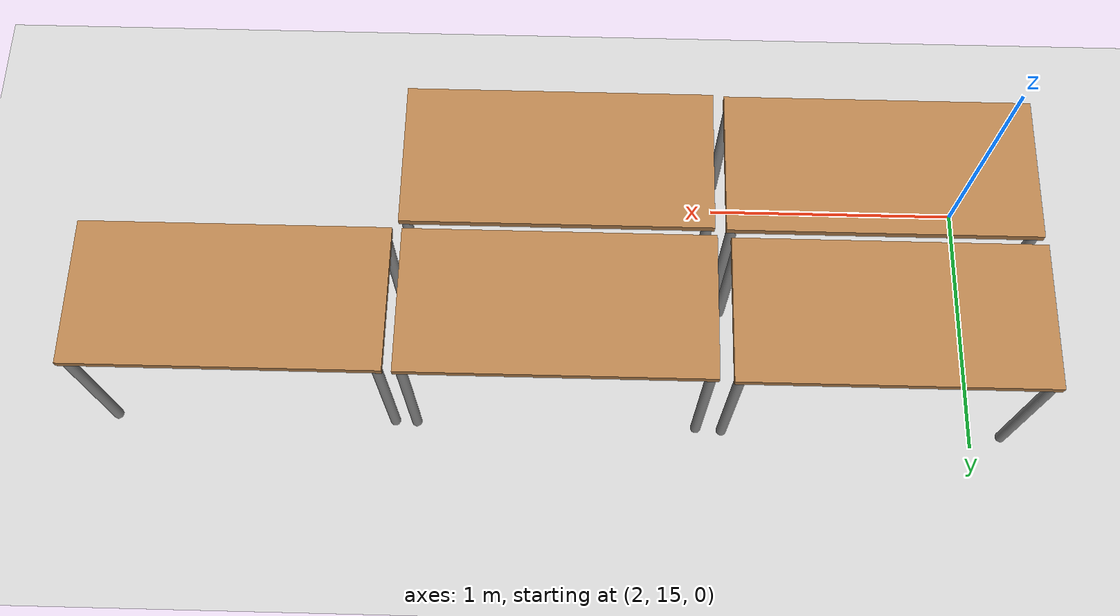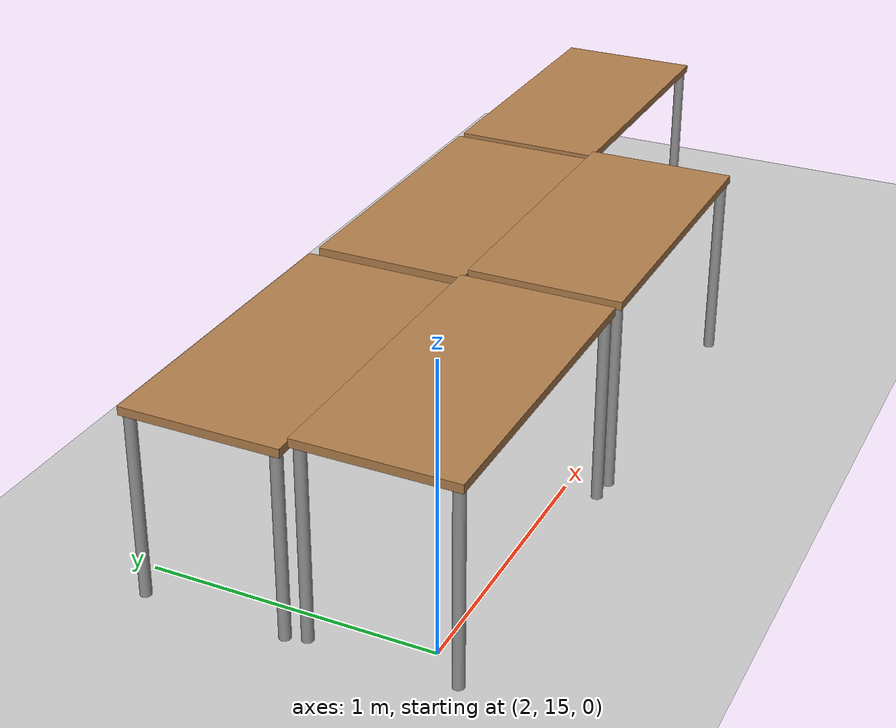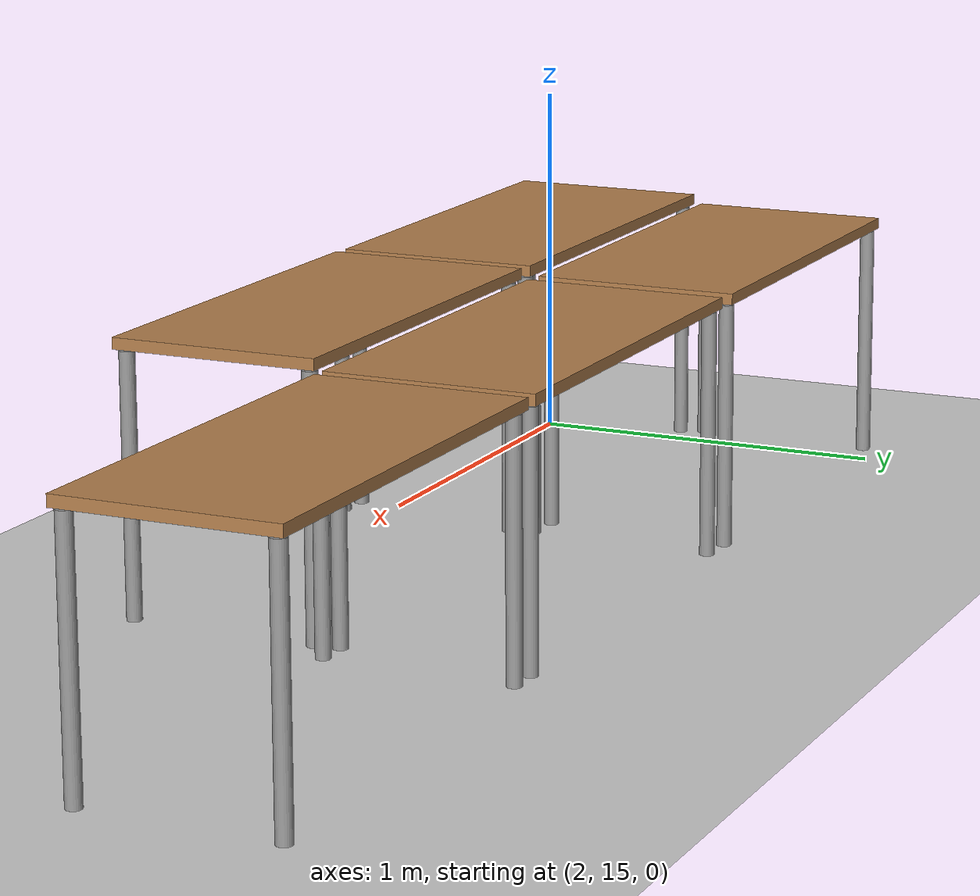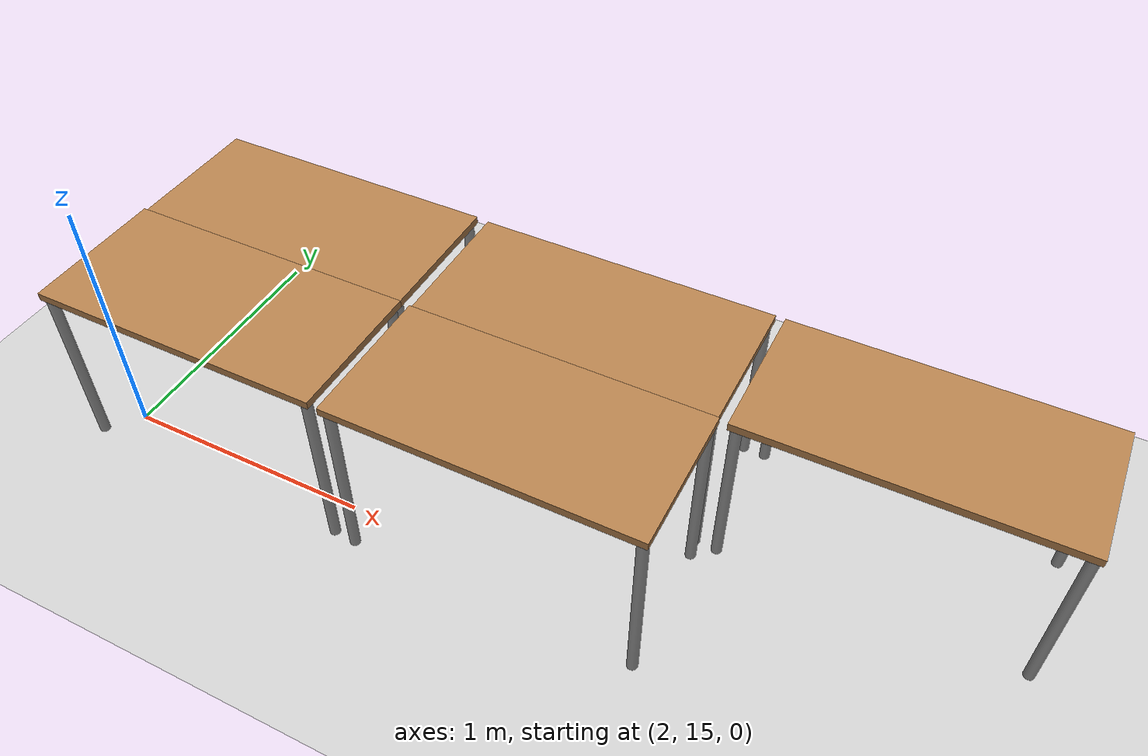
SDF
<sdf version="1.6">
 <world name="default">
  <model name="ground_plane">
   <static>1</static>
   <link name="link">
    <collision name="collision">
     <geometry><plane><normal>0 0 1</normal><size>100 100</size></plane></geometry>
     <surface>
      <contact><collide_bitmask>65535</collide_bitmask></contact>
      <friction><ode><mu>100</mu><mu2>50</mu2></ode></friction>
     </surface>
    </collision>
    <visual name="visual">
     <cast_shadows>0</cast_shadows>
     <geometry><plane><normal>0 0 1</normal><size>100 100</size></plane></geometry>
     <material>
      <script><uri>file://media/materials/scripts/gazebo.material</uri><name>Gazebo/Grey</name></script>
     </material>
    </visual>
   </link>
  </model>
  <model name="table_petite_clone_0_clone_clone">
   <link name="link">
    <inertial>
     <mass>1</mass>
     <inertia><ixx>1</ixx><ixy>0</ixy><ixz>0</ixz><iyy>1</iyy><iyz>0</iyz><izz>1</izz></inertia>
    </inertial>
    <visual name="back_right_leg">
     <pose>-0.55 -0.25 0.34 0 -0 0</pose>
     <geometry><cylinder><radius>0.02</radius><length>0.68</length></cylinder></geometry>
     <material>
      <script><uri>file://media/materials/scripts/gazebo.material</uri><name>Gazebo/Grey</name></script>
      <shader type="pixel"><normal_map>__default__</normal_map></shader>
      <ambient>0.3 0.3 0.3 1</ambient>
      <diffuse>0.7 0.7 0.7 1</diffuse>
      <specular>0.01 0.01 0.01 1</specular>
      <emissive>0 0 0 1</emissive>
     </material>
    </visual>
    <visual name="front_right_leg">
     <pose>0.55 -0.25 0.34 0 -0 0</pose>
     <geometry><cylinder><radius>0.02</radius><length>0.68</length></cylinder></geometry>
     <material>
      <script><uri>file://media/materials/scripts/gazebo.material</uri><name>Gazebo/Grey</name></script>
      <shader type="pixel"><normal_map>__default__</normal_map></shader>
      <ambient>0.3 0.3 0.3 1</ambient>
      <diffuse>0.7 0.7 0.7 1</diffuse>
      <specular>0.01 0.01 0.01 1</specular>
      <emissive>0 0 0 1</emissive>
     </material>
    </visual>
    <visual name="back_left_leg">
     <pose>-0.55 0.25 0.34 0 -0 0</pose>
     <geometry><cylinder><radius>0.02</radius><length>0.68</length></cylinder></geometry>
     <material>
      <script><uri>file://media/materials/scripts/gazebo.material</uri><name>Gazebo/Grey</name></script>
      <shader type="pixel"><normal_map>__default__</normal_map></shader>
      <ambient>0.3 0.3 0.3 1</ambient>
      <diffuse>0.7 0.7 0.7 1</diffuse>
      <specular>0.01 0.01 0.01 1</specular>
      <emissive>0 0 0 1</emissive>
     </material>
    </visual>
    <visual name="front_left_leg">
     <pose>0.55 0.25 0.34 0 -0 0</pose>
     <geometry><cylinder><radius>0.02</radius><length>0.68</length></cylinder></geometry>
     <material>
      <script><uri>file://media/materials/scripts/gazebo.material</uri><name>Gazebo/Grey</name></script>
      <shader type="pixel"><normal_map>__default__</normal_map></shader>
      <ambient>0.3 0.3 0.3 1</ambient>
      <diffuse>0.7 0.7 0.7 1</diffuse>
      <specular>0.01 0.01 0.01 1</specular>
      <emissive>0 0 0 1</emissive>
     </material>
    </visual>
    <visual name="visual1">
     <pose>0 0 0.7 0 -0 0</pose>
     <geometry><box><size>1.15 0.55 0.03</size></box></geometry>
     <material>
      <script><uri>file://media/materials/scripts/gazebo.material</uri><name>Gazebo/Wood</name></script>
      <shader type="pixel"><normal_map>__default__</normal_map></shader>
      <ambient>1 1 1 1</ambient>
      <diffuse>1 1 1 1</diffuse>
      <specular>0.2 0.2 0.2 1</specular>
      <emissive>0 0 0 1</emissive>
     </material>
    </visual>
    <collision name="surface">
     <pose>0 0 0.7 0 -0 0</pose>
     <geometry><box><size>1.15 0.55 0.03</size></box></geometry>
     <surface>
      <friction>
       <ode><mu>0.6</mu><mu2>0.6</mu2><fdir1>0 0 0</fdir1><slip1>0</slip1><slip2>0</slip2></ode>
       <torsional>
        <coefficient>1</coefficient>
        <patch_radius>0</patch_radius>
        <surface_radius>0</surface_radius>
        <use_patch_radius>1</use_patch_radius>
        <ode><slip>0</slip></ode>
       </torsional>
      </friction>
      <bounce><restitution_coefficient>0</restitution_coefficient><threshold>1e+06</threshold></bounce>
      <contact>
       <collide_without_contact>0</collide_without_contact>
       <collide_without_contact_bitmask>1</collide_without_contact_bitmask>
       <collide_bitmask>1</collide_bitmask>
       <ode>
        <soft_cfm>0</soft_cfm>
        <soft_erp>0.2</soft_erp>
        <kp>1e+13</kp>
        <kd>1</kd>
        <max_vel>0.01</max_vel>
        <min_depth>0</min_depth>
       </ode>
       <bullet>
        <split_impulse>1</split_impulse>
        <split_impulse_penetration_threshold>-0.01</split_impulse_penetration_threshold>
        <soft_cfm>0</soft_cfm>
        <soft_erp>0.2</soft_erp>
        <kp>1e+13</kp>
        <kd>1</kd>
       </bullet>
      </contact>
     </surface>
    </collision>
    <collision name="back_right_leg">
     <pose>-0.55 -0.25 0.34 0 -0 0</pose>
     <geometry><cylinder><radius>0.02</radius><length>0.68</length></cylinder></geometry>
     <surface>
      <friction>
       <ode><mu>1</mu><mu2>1</mu2><fdir1>0 0 0</fdir1><slip1>0</slip1><slip2>0</slip2></ode>
       <torsional>
        <coefficient>1</coefficient>
        <patch_radius>0</patch_radius>
        <surface_radius>0</surface_radius>
        <use_patch_radius>1</use_patch_radius>
        <ode><slip>0</slip></ode>
       </torsional>
      </friction>
      <bounce><restitution_coefficient>0</restitution_coefficient><threshold>1e+06</threshold></bounce>
      <contact>
       <collide_without_contact>0</collide_without_contact>
       <collide_without_contact_bitmask>1</collide_without_contact_bitmask>
       <collide_bitmask>1</collide_bitmask>
       <ode>
        <soft_cfm>0</soft_cfm>
        <soft_erp>0.2</soft_erp>
        <kp>1e+13</kp>
        <kd>1</kd>
        <max_vel>0.01</max_vel>
        <min_depth>0</min_depth>
       </ode>
       <bullet>
        <split_impulse>1</split_impulse>
        <split_impulse_penetration_threshold>-0.01</split_impulse_penetration_threshold>
        <soft_cfm>0</soft_cfm>
        <soft_erp>0.2</soft_erp>
        <kp>1e+13</kp>
        <kd>1</kd>
       </bullet>
      </contact>
     </surface>
    </collision>
    <collision name="back_left_leg">
     <pose>-0.55 0.25 0.34 0 -0 0</pose>
     <geometry><cylinder><radius>0.02</radius><length>0.68</length></cylinder></geometry>
     <surface>
      <friction>
       <ode><mu>1</mu><mu2>1</mu2><fdir1>0 0 0</fdir1><slip1>0</slip1><slip2>0</slip2></ode>
       <torsional>
        <coefficient>1</coefficient>
        <patch_radius>0</patch_radius>
        <surface_radius>0</surface_radius>
        <use_patch_radius>1</use_patch_radius>
        <ode><slip>0</slip></ode>
       </torsional>
      </friction>
      <bounce><restitution_coefficient>0</restitution_coefficient><threshold>1e+06</threshold></bounce>
      <contact>
       <collide_without_contact>0</collide_without_contact>
       <collide_without_contact_bitmask>1</collide_without_contact_bitmask>
       <collide_bitmask>1</collide_bitmask>
       <ode>
        <soft_cfm>0</soft_cfm>
        <soft_erp>0.2</soft_erp>
        <kp>1e+13</kp>
        <kd>1</kd>
        <max_vel>0.01</max_vel>
        <min_depth>0</min_depth>
       </ode>
       <bullet>
        <split_impulse>1</split_impulse>
        <split_impulse_penetration_threshold>-0.01</split_impulse_penetration_threshold>
        <soft_cfm>0</soft_cfm>
        <soft_erp>0.2</soft_erp>
        <kp>1e+13</kp>
        <kd>1</kd>
       </bullet>
      </contact>
     </surface>
    </collision>
    <collision name="front_left_leg">
     <pose>0.55 0.25 0.34 0 -0 0</pose>
     <geometry><cylinder><radius>0.02</radius><length>0.68</length></cylinder></geometry>
     <surface>
      <friction>
       <ode><mu>1</mu><mu2>1</mu2><fdir1>0 0 0</fdir1><slip1>0</slip1><slip2>0</slip2></ode>
       <torsional>
        <coefficient>1</coefficient>
        <patch_radius>0</patch_radius>
        <surface_radius>0</surface_radius>
        <use_patch_radius>1</use_patch_radius>
        <ode><slip>0</slip></ode>
       </torsional>
      </friction>
      <bounce><restitution_coefficient>0</restitution_coefficient><threshold>1e+06</threshold></bounce>
      <contact>
       <collide_without_contact>0</collide_without_contact>
       <collide_without_contact_bitmask>1</collide_without_contact_bitmask>
       <collide_bitmask>1</collide_bitmask>
       <ode>
        <soft_cfm>0</soft_cfm>
        <soft_erp>0.2</soft_erp>
        <kp>1e+13</kp>
        <kd>1</kd>
        <max_vel>0.01</max_vel>
        <min_depth>0</min_depth>
       </ode>
       <bullet>
        <split_impulse>1</split_impulse>
        <split_impulse_penetration_threshold>-0.01</split_impulse_penetration_threshold>
        <soft_cfm>0</soft_cfm>
        <soft_erp>0.2</soft_erp>
        <kp>1e+13</kp>
        <kd>1</kd>
       </bullet>
      </contact>
     </surface>
    </collision>
    <collision name="front_right_leg">
     <pose>0.55 -0.25 0.34 0 -0 0</pose>
     <geometry><cylinder><radius>0.02</radius><length>0.68</length></cylinder></geometry>
     <surface>
      <friction>
       <ode><mu>1</mu><mu2>1</mu2><fdir1>0 0 0</fdir1><slip1>0</slip1><slip2>0</slip2></ode>
       <torsional>
        <coefficient>1</coefficient>
        <patch_radius>0</patch_radius>
        <surface_radius>0</surface_radius>
        <use_patch_radius>1</use_patch_radius>
        <ode><slip>0</slip></ode>
       </torsional>
      </friction>
      <bounce><restitution_coefficient>0</restitution_coefficient><threshold>1e+06</threshold></bounce>
      <contact>
       <collide_without_contact>0</collide_without_contact>
       <collide_without_contact_bitmask>1</collide_without_contact_bitmask>
       <collide_bitmask>1</collide_bitmask>
       <ode>
        <soft_cfm>0</soft_cfm>
        <soft_erp>0.2</soft_erp>
        <kp>1e+13</kp>
        <kd>1</kd>
        <max_vel>0.01</max_vel>
        <min_depth>0</min_depth>
       </ode>
       <bullet>
        <split_impulse>1</split_impulse>
        <split_impulse_penetration_threshold>-0.01</split_impulse_penetration_threshold>
        <soft_cfm>0</soft_cfm>
        <soft_erp>0.2</soft_erp>
        <kp>1e+13</kp>
        <kd>1</kd>
       </bullet>
      </contact>
     </surface>
    </collision>
   </link>
   <static>1</static>
   <pose>4.81182 15.6908 -0.033907 0 -0 3.14159</pose>
  </model>
  <model name="table_petite_clone_0_clone_clone_0">
   <link name="link">
    <inertial>
     <mass>1</mass>
     <inertia><ixx>1</ixx><ixy>0</ixy><ixz>0</ixz><iyy>1</iyy><iyz>0</iyz><izz>1</izz></inertia>
    </inertial>
    <visual name="back_right_leg">
     <pose>-0.55 -0.25 0.34 0 -0 0</pose>
     <geometry><cylinder><radius>0.02</radius><length>0.68</length></cylinder></geometry>
     <material>
      <script><uri>file://media/materials/scripts/gazebo.material</uri><name>Gazebo/Grey</name></script>
      <shader type="pixel"><normal_map>__default__</normal_map></shader>
      <ambient>0.3 0.3 0.3 1</ambient>
      <diffuse>0.7 0.7 0.7 1</diffuse>
      <specular>0.01 0.01 0.01 1</specular>
      <emissive>0 0 0 1</emissive>
     </material>
    </visual>
    <visual name="front_right_leg">
     <pose>0.55 -0.25 0.34 0 -0 0</pose>
     <geometry><cylinder><radius>0.02</radius><length>0.68</length></cylinder></geometry>
     <material>
      <script><uri>file://media/materials/scripts/gazebo.material</uri><name>Gazebo/Grey</name></script>
      <shader type="pixel"><normal_map>__default__</normal_map></shader>
      <ambient>0.3 0.3 0.3 1</ambient>
      <diffuse>0.7 0.7 0.7 1</diffuse>
      <specular>0.01 0.01 0.01 1</specular>
      <emissive>0 0 0 1</emissive>
     </material>
    </visual>
    <visual name="back_left_leg">
     <pose>-0.55 0.25 0.34 0 -0 0</pose>
     <geometry><cylinder><radius>0.02</radius><length>0.68</length></cylinder></geometry>
     <material>
      <script><uri>file://media/materials/scripts/gazebo.material</uri><name>Gazebo/Grey</name></script>
      <shader type="pixel"><normal_map>__default__</normal_map></shader>
      <ambient>0.3 0.3 0.3 1</ambient>
      <diffuse>0.7 0.7 0.7 1</diffuse>
      <specular>0.01 0.01 0.01 1</specular>
      <emissive>0 0 0 1</emissive>
     </material>
    </visual>
    <visual name="front_left_leg">
     <pose>0.55 0.25 0.34 0 -0 0</pose>
     <geometry><cylinder><radius>0.02</radius><length>0.68</length></cylinder></geometry>
     <material>
      <script><uri>file://media/materials/scripts/gazebo.material</uri><name>Gazebo/Grey</name></script>
      <shader type="pixel"><normal_map>__default__</normal_map></shader>
      <ambient>0.3 0.3 0.3 1</ambient>
      <diffuse>0.7 0.7 0.7 1</diffuse>
      <specular>0.01 0.01 0.01 1</specular>
      <emissive>0 0 0 1</emissive>
     </material>
    </visual>
    <visual name="visual1">
     <pose>0 0 0.7 0 -0 0</pose>
     <geometry><box><size>1.15 0.55 0.03</size></box></geometry>
     <material>
      <script><uri>file://media/materials/scripts/gazebo.material</uri><name>Gazebo/Wood</name></script>
      <shader type="pixel"><normal_map>__default__</normal_map></shader>
      <ambient>1 1 1 1</ambient>
      <diffuse>1 1 1 1</diffuse>
      <specular>0.2 0.2 0.2 1</specular>
      <emissive>0 0 0 1</emissive>
     </material>
    </visual>
    <collision name="surface">
     <pose>0 0 0.7 0 -0 0</pose>
     <geometry><box><size>1.15 0.55 0.03</size></box></geometry>
     <surface>
      <friction>
       <ode><mu>0.6</mu><mu2>0.6</mu2><fdir1>0 0 0</fdir1><slip1>0</slip1><slip2>0</slip2></ode>
       <torsional>
        <coefficient>1</coefficient>
        <patch_radius>0</patch_radius>
        <surface_radius>0</surface_radius>
        <use_patch_radius>1</use_patch_radius>
        <ode><slip>0</slip></ode>
       </torsional>
      </friction>
      <bounce><restitution_coefficient>0</restitution_coefficient><threshold>1e+06</threshold></bounce>
      <contact>
       <collide_without_contact>0</collide_without_contact>
       <collide_without_contact_bitmask>1</collide_without_contact_bitmask>
       <collide_bitmask>1</collide_bitmask>
       <ode>
        <soft_cfm>0</soft_cfm>
        <soft_erp>0.2</soft_erp>
        <kp>1e+13</kp>
        <kd>1</kd>
        <max_vel>0.01</max_vel>
        <min_depth>0</min_depth>
       </ode>
       <bullet>
        <split_impulse>1</split_impulse>
        <split_impulse_penetration_threshold>-0.01</split_impulse_penetration_threshold>
        <soft_cfm>0</soft_cfm>
        <soft_erp>0.2</soft_erp>
        <kp>1e+13</kp>
        <kd>1</kd>
       </bullet>
      </contact>
     </surface>
    </collision>
    <collision name="back_right_leg">
     <pose>-0.55 -0.25 0.34 0 -0 0</pose>
     <geometry><cylinder><radius>0.02</radius><length>0.68</length></cylinder></geometry>
     <surface>
      <friction>
       <ode><mu>1</mu><mu2>1</mu2><fdir1>0 0 0</fdir1><slip1>0</slip1><slip2>0</slip2></ode>
       <torsional>
        <coefficient>1</coefficient>
        <patch_radius>0</patch_radius>
        <surface_radius>0</surface_radius>
        <use_patch_radius>1</use_patch_radius>
        <ode><slip>0</slip></ode>
       </torsional>
      </friction>
      <bounce><restitution_coefficient>0</restitution_coefficient><threshold>1e+06</threshold></bounce>
      <contact>
       <collide_without_contact>0</collide_without_contact>
       <collide_without_contact_bitmask>1</collide_without_contact_bitmask>
       <collide_bitmask>1</collide_bitmask>
       <ode>
        <soft_cfm>0</soft_cfm>
        <soft_erp>0.2</soft_erp>
        <kp>1e+13</kp>
        <kd>1</kd>
        <max_vel>0.01</max_vel>
        <min_depth>0</min_depth>
       </ode>
       <bullet>
        <split_impulse>1</split_impulse>
        <split_impulse_penetration_threshold>-0.01</split_impulse_penetration_threshold>
        <soft_cfm>0</soft_cfm>
        <soft_erp>0.2</soft_erp>
        <kp>1e+13</kp>
        <kd>1</kd>
       </bullet>
      </contact>
     </surface>
    </collision>
    <collision name="back_left_leg">
     <pose>-0.55 0.25 0.34 0 -0 0</pose>
     <geometry><cylinder><radius>0.02</radius><length>0.68</length></cylinder></geometry>
     <surface>
      <friction>
       <ode><mu>1</mu><mu2>1</mu2><fdir1>0 0 0</fdir1><slip1>0</slip1><slip2>0</slip2></ode>
       <torsional>
        <coefficient>1</coefficient>
        <patch_radius>0</patch_radius>
        <surface_radius>0</surface_radius>
        <use_patch_radius>1</use_patch_radius>
        <ode><slip>0</slip></ode>
       </torsional>
      </friction>
      <bounce><restitution_coefficient>0</restitution_coefficient><threshold>1e+06</threshold></bounce>
      <contact>
       <collide_without_contact>0</collide_without_contact>
       <collide_without_contact_bitmask>1</collide_without_contact_bitmask>
       <collide_bitmask>1</collide_bitmask>
       <ode>
        <soft_cfm>0</soft_cfm>
        <soft_erp>0.2</soft_erp>
        <kp>1e+13</kp>
        <kd>1</kd>
        <max_vel>0.01</max_vel>
        <min_depth>0</min_depth>
       </ode>
       <bullet>
        <split_impulse>1</split_impulse>
        <split_impulse_penetration_threshold>-0.01</split_impulse_penetration_threshold>
        <soft_cfm>0</soft_cfm>
        <soft_erp>0.2</soft_erp>
        <kp>1e+13</kp>
        <kd>1</kd>
       </bullet>
      </contact>
     </surface>
    </collision>
    <collision name="front_left_leg">
     <pose>0.55 0.25 0.34 0 -0 0</pose>
     <geometry><cylinder><radius>0.02</radius><length>0.68</length></cylinder></geometry>
     <surface>
      <friction>
       <ode><mu>1</mu><mu2>1</mu2><fdir1>0 0 0</fdir1><slip1>0</slip1><slip2>0</slip2></ode>
       <torsional>
        <coefficient>1</coefficient>
        <patch_radius>0</patch_radius>
        <surface_radius>0</surface_radius>
        <use_patch_radius>1</use_patch_radius>
        <ode><slip>0</slip></ode>
       </torsional>
      </friction>
      <bounce><restitution_coefficient>0</restitution_coefficient><threshold>1e+06</threshold></bounce>
      <contact>
       <collide_without_contact>0</collide_without_contact>
       <collide_without_contact_bitmask>1</collide_without_contact_bitmask>
       <collide_bitmask>1</collide_bitmask>
       <ode>
        <soft_cfm>0</soft_cfm>
        <soft_erp>0.2</soft_erp>
        <kp>1e+13</kp>
        <kd>1</kd>
        <max_vel>0.01</max_vel>
        <min_depth>0</min_depth>
       </ode>
       <bullet>
        <split_impulse>1</split_impulse>
        <split_impulse_penetration_threshold>-0.01</split_impulse_penetration_threshold>
        <soft_cfm>0</soft_cfm>
        <soft_erp>0.2</soft_erp>
        <kp>1e+13</kp>
        <kd>1</kd>
       </bullet>
      </contact>
     </surface>
    </collision>
    <collision name="front_right_leg">
     <pose>0.55 -0.25 0.34 0 -0 0</pose>
     <geometry><cylinder><radius>0.02</radius><length>0.68</length></cylinder></geometry>
     <surface>
      <friction>
       <ode><mu>1</mu><mu2>1</mu2><fdir1>0 0 0</fdir1><slip1>0</slip1><slip2>0</slip2></ode>
       <torsional>
        <coefficient>1</coefficient>
        <patch_radius>0</patch_radius>
        <surface_radius>0</surface_radius>
        <use_patch_radius>1</use_patch_radius>
        <ode><slip>0</slip></ode>
       </torsional>
      </friction>
      <bounce><restitution_coefficient>0</restitution_coefficient><threshold>1e+06</threshold></bounce>
      <contact>
       <collide_without_contact>0</collide_without_contact>
       <collide_without_contact_bitmask>1</collide_without_contact_bitmask>
       <collide_bitmask>1</collide_bitmask>
       <ode>
        <soft_cfm>0</soft_cfm>
        <soft_erp>0.2</soft_erp>
        <kp>1e+13</kp>
        <kd>1</kd>
        <max_vel>0.01</max_vel>
        <min_depth>0</min_depth>
       </ode>
       <bullet>
        <split_impulse>1</split_impulse>
        <split_impulse_penetration_threshold>-0.01</split_impulse_penetration_threshold>
        <soft_cfm>0</soft_cfm>
        <soft_erp>0.2</soft_erp>
        <kp>1e+13</kp>
        <kd>1</kd>
       </bullet>
      </contact>
     </surface>
    </collision>
   </link>
   <static>1</static>
   <pose>3.62668 15.6922 -0.033907 0 -0 3.14159</pose>
  </model>
  <model name="table_petite_clone_0_clone_clone_1">
   <link name="link">
    <inertial>
     <mass>1</mass>
     <inertia><ixx>1</ixx><ixy>0</ixy><ixz>0</ixz><iyy>1</iyy><iyz>0</iyz><izz>1</izz></inertia>
    </inertial>
    <visual name="back_right_leg">
     <pose>-0.55 -0.25 0.34 0 -0 0</pose>
     <geometry><cylinder><radius>0.02</radius><length>0.68</length></cylinder></geometry>
     <material>
      <script><uri>file://media/materials/scripts/gazebo.material</uri><name>Gazebo/Grey</name></script>
      <shader type="pixel"><normal_map>__default__</normal_map></shader>
      <ambient>0.3 0.3 0.3 1</ambient>
      <diffuse>0.7 0.7 0.7 1</diffuse>
      <specular>0.01 0.01 0.01 1</specular>
      <emissive>0 0 0 1</emissive>
     </material>
    </visual>
    <visual name="front_right_leg">
     <pose>0.55 -0.25 0.34 0 -0 0</pose>
     <geometry><cylinder><radius>0.02</radius><length>0.68</length></cylinder></geometry>
     <material>
      <script><uri>file://media/materials/scripts/gazebo.material</uri><name>Gazebo/Grey</name></script>
      <shader type="pixel"><normal_map>__default__</normal_map></shader>
      <ambient>0.3 0.3 0.3 1</ambient>
      <diffuse>0.7 0.7 0.7 1</diffuse>
      <specular>0.01 0.01 0.01 1</specular>
      <emissive>0 0 0 1</emissive>
     </material>
    </visual>
    <visual name="back_left_leg">
     <pose>-0.55 0.25 0.34 0 -0 0</pose>
     <geometry><cylinder><radius>0.02</radius><length>0.68</length></cylinder></geometry>
     <material>
      <script><uri>file://media/materials/scripts/gazebo.material</uri><name>Gazebo/Grey</name></script>
      <shader type="pixel"><normal_map>__default__</normal_map></shader>
      <ambient>0.3 0.3 0.3 1</ambient>
      <diffuse>0.7 0.7 0.7 1</diffuse>
      <specular>0.01 0.01 0.01 1</specular>
      <emissive>0 0 0 1</emissive>
     </material>
    </visual>
    <visual name="front_left_leg">
     <pose>0.55 0.25 0.34 0 -0 0</pose>
     <geometry><cylinder><radius>0.02</radius><length>0.68</length></cylinder></geometry>
     <material>
      <script><uri>file://media/materials/scripts/gazebo.material</uri><name>Gazebo/Grey</name></script>
      <shader type="pixel"><normal_map>__default__</normal_map></shader>
      <ambient>0.3 0.3 0.3 1</ambient>
      <diffuse>0.7 0.7 0.7 1</diffuse>
      <specular>0.01 0.01 0.01 1</specular>
      <emissive>0 0 0 1</emissive>
     </material>
    </visual>
    <visual name="visual1">
     <pose>0 0 0.7 0 -0 0</pose>
     <geometry><box><size>1.15 0.55 0.03</size></box></geometry>
     <material>
      <script><uri>file://media/materials/scripts/gazebo.material</uri><name>Gazebo/Wood</name></script>
      <shader type="pixel"><normal_map>__default__</normal_map></shader>
      <ambient>1 1 1 1</ambient>
      <diffuse>1 1 1 1</diffuse>
      <specular>0.2 0.2 0.2 1</specular>
      <emissive>0 0 0 1</emissive>
     </material>
    </visual>
    <collision name="surface">
     <pose>0 0 0.7 0 -0 0</pose>
     <geometry><box><size>1.15 0.55 0.03</size></box></geometry>
     <surface>
      <friction>
       <ode><mu>0.6</mu><mu2>0.6</mu2><fdir1>0 0 0</fdir1><slip1>0</slip1><slip2>0</slip2></ode>
       <torsional>
        <coefficient>1</coefficient>
        <patch_radius>0</patch_radius>
        <surface_radius>0</surface_radius>
        <use_patch_radius>1</use_patch_radius>
        <ode><slip>0</slip></ode>
       </torsional>
      </friction>
      <bounce><restitution_coefficient>0</restitution_coefficient><threshold>1e+06</threshold></bounce>
      <contact>
       <collide_without_contact>0</collide_without_contact>
       <collide_without_contact_bitmask>1</collide_without_contact_bitmask>
       <collide_bitmask>1</collide_bitmask>
       <ode>
        <soft_cfm>0</soft_cfm>
        <soft_erp>0.2</soft_erp>
        <kp>1e+13</kp>
        <kd>1</kd>
        <max_vel>0.01</max_vel>
        <min_depth>0</min_depth>
       </ode>
       <bullet>
        <split_impulse>1</split_impulse>
        <split_impulse_penetration_threshold>-0.01</split_impulse_penetration_threshold>
        <soft_cfm>0</soft_cfm>
        <soft_erp>0.2</soft_erp>
        <kp>1e+13</kp>
        <kd>1</kd>
       </bullet>
      </contact>
     </surface>
    </collision>
    <collision name="back_right_leg">
     <pose>-0.55 -0.25 0.34 0 -0 0</pose>
     <geometry><cylinder><radius>0.02</radius><length>0.68</length></cylinder></geometry>
     <surface>
      <friction>
       <ode><mu>1</mu><mu2>1</mu2><fdir1>0 0 0</fdir1><slip1>0</slip1><slip2>0</slip2></ode>
       <torsional>
        <coefficient>1</coefficient>
        <patch_radius>0</patch_radius>
        <surface_radius>0</surface_radius>
        <use_patch_radius>1</use_patch_radius>
        <ode><slip>0</slip></ode>
       </torsional>
      </friction>
      <bounce><restitution_coefficient>0</restitution_coefficient><threshold>1e+06</threshold></bounce>
      <contact>
       <collide_without_contact>0</collide_without_contact>
       <collide_without_contact_bitmask>1</collide_without_contact_bitmask>
       <collide_bitmask>1</collide_bitmask>
       <ode>
        <soft_cfm>0</soft_cfm>
        <soft_erp>0.2</soft_erp>
        <kp>1e+13</kp>
        <kd>1</kd>
        <max_vel>0.01</max_vel>
        <min_depth>0</min_depth>
       </ode>
       <bullet>
        <split_impulse>1</split_impulse>
        <split_impulse_penetration_threshold>-0.01</split_impulse_penetration_threshold>
        <soft_cfm>0</soft_cfm>
        <soft_erp>0.2</soft_erp>
        <kp>1e+13</kp>
        <kd>1</kd>
       </bullet>
      </contact>
     </surface>
    </collision>
    <collision name="back_left_leg">
     <pose>-0.55 0.25 0.34 0 -0 0</pose>
     <geometry><cylinder><radius>0.02</radius><length>0.68</length></cylinder></geometry>
     <surface>
      <friction>
       <ode><mu>1</mu><mu2>1</mu2><fdir1>0 0 0</fdir1><slip1>0</slip1><slip2>0</slip2></ode>
       <torsional>
        <coefficient>1</coefficient>
        <patch_radius>0</patch_radius>
        <surface_radius>0</surface_radius>
        <use_patch_radius>1</use_patch_radius>
        <ode><slip>0</slip></ode>
       </torsional>
      </friction>
      <bounce><restitution_coefficient>0</restitution_coefficient><threshold>1e+06</threshold></bounce>
      <contact>
       <collide_without_contact>0</collide_without_contact>
       <collide_without_contact_bitmask>1</collide_without_contact_bitmask>
       <collide_bitmask>1</collide_bitmask>
       <ode>
        <soft_cfm>0</soft_cfm>
        <soft_erp>0.2</soft_erp>
        <kp>1e+13</kp>
        <kd>1</kd>
        <max_vel>0.01</max_vel>
        <min_depth>0</min_depth>
       </ode>
       <bullet>
        <split_impulse>1</split_impulse>
        <split_impulse_penetration_threshold>-0.01</split_impulse_penetration_threshold>
        <soft_cfm>0</soft_cfm>
        <soft_erp>0.2</soft_erp>
        <kp>1e+13</kp>
        <kd>1</kd>
       </bullet>
      </contact>
     </surface>
    </collision>
    <collision name="front_left_leg">
     <pose>0.55 0.25 0.34 0 -0 0</pose>
     <geometry><cylinder><radius>0.02</radius><length>0.68</length></cylinder></geometry>
     <surface>
      <friction>
       <ode><mu>1</mu><mu2>1</mu2><fdir1>0 0 0</fdir1><slip1>0</slip1><slip2>0</slip2></ode>
       <torsional>
        <coefficient>1</coefficient>
        <patch_radius>0</patch_radius>
        <surface_radius>0</surface_radius>
        <use_patch_radius>1</use_patch_radius>
        <ode><slip>0</slip></ode>
       </torsional>
      </friction>
      <bounce><restitution_coefficient>0</restitution_coefficient><threshold>1e+06</threshold></bounce>
      <contact>
       <collide_without_contact>0</collide_without_contact>
       <collide_without_contact_bitmask>1</collide_without_contact_bitmask>
       <collide_bitmask>1</collide_bitmask>
       <ode>
        <soft_cfm>0</soft_cfm>
        <soft_erp>0.2</soft_erp>
        <kp>1e+13</kp>
        <kd>1</kd>
        <max_vel>0.01</max_vel>
        <min_depth>0</min_depth>
       </ode>
       <bullet>
        <split_impulse>1</split_impulse>
        <split_impulse_penetration_threshold>-0.01</split_impulse_penetration_threshold>
        <soft_cfm>0</soft_cfm>
        <soft_erp>0.2</soft_erp>
        <kp>1e+13</kp>
        <kd>1</kd>
       </bullet>
      </contact>
     </surface>
    </collision>
    <collision name="front_right_leg">
     <pose>0.55 -0.25 0.34 0 -0 0</pose>
     <geometry><cylinder><radius>0.02</radius><length>0.68</length></cylinder></geometry>
     <surface>
      <friction>
       <ode><mu>1</mu><mu2>1</mu2><fdir1>0 0 0</fdir1><slip1>0</slip1><slip2>0</slip2></ode>
       <torsional>
        <coefficient>1</coefficient>
        <patch_radius>0</patch_radius>
        <surface_radius>0</surface_radius>
        <use_patch_radius>1</use_patch_radius>
        <ode><slip>0</slip></ode>
       </torsional>
      </friction>
      <bounce><restitution_coefficient>0</restitution_coefficient><threshold>1e+06</threshold></bounce>
      <contact>
       <collide_without_contact>0</collide_without_contact>
       <collide_without_contact_bitmask>1</collide_without_contact_bitmask>
       <collide_bitmask>1</collide_bitmask>
       <ode>
        <soft_cfm>0</soft_cfm>
        <soft_erp>0.2</soft_erp>
        <kp>1e+13</kp>
        <kd>1</kd>
        <max_vel>0.01</max_vel>
        <min_depth>0</min_depth>
       </ode>
       <bullet>
        <split_impulse>1</split_impulse>
        <split_impulse_penetration_threshold>-0.01</split_impulse_penetration_threshold>
        <soft_cfm>0</soft_cfm>
        <soft_erp>0.2</soft_erp>
        <kp>1e+13</kp>
        <kd>1</kd>
       </bullet>
      </contact>
     </surface>
    </collision>
   </link>
   <static>1</static>
   <pose>2.42575 15.6999 -0.033907 0 -0 3.14159</pose>
  </model>
  <model name="table_petite_clone_0_clone_clone_5">
   <link name="link">
    <inertial>
     <mass>1</mass>
     <inertia><ixx>1</ixx><ixy>0</ixy><ixz>0</ixz><iyy>1</iyy><iyz>0</iyz><izz>1</izz></inertia>
    </inertial>
    <visual name="back_right_leg">
     <pose>-0.55 -0.25 0.34 0 -0 0</pose>
     <geometry><cylinder><radius>0.02</radius><length>0.68</length></cylinder></geometry>
     <material>
      <script><uri>file://media/materials/scripts/gazebo.material</uri><name>Gazebo/Grey</name></script>
      <shader type="pixel"><normal_map>__default__</normal_map></shader>
      <ambient>0.3 0.3 0.3 1</ambient>
      <diffuse>0.7 0.7 0.7 1</diffuse>
      <specular>0.01 0.01 0.01 1</specular>
      <emissive>0 0 0 1</emissive>
     </material>
    </visual>
    <visual name="front_right_leg">
     <pose>0.55 -0.25 0.34 0 -0 0</pose>
     <geometry><cylinder><radius>0.02</radius><length>0.68</length></cylinder></geometry>
     <material>
      <script><uri>file://media/materials/scripts/gazebo.material</uri><name>Gazebo/Grey</name></script>
      <shader type="pixel"><normal_map>__default__</normal_map></shader>
      <ambient>0.3 0.3 0.3 1</ambient>
      <diffuse>0.7 0.7 0.7 1</diffuse>
      <specular>0.01 0.01 0.01 1</specular>
      <emissive>0 0 0 1</emissive>
     </material>
    </visual>
    <visual name="back_left_leg">
     <pose>-0.55 0.25 0.34 0 -0 0</pose>
     <geometry><cylinder><radius>0.02</radius><length>0.68</length></cylinder></geometry>
     <material>
      <script><uri>file://media/materials/scripts/gazebo.material</uri><name>Gazebo/Grey</name></script>
      <shader type="pixel"><normal_map>__default__</normal_map></shader>
      <ambient>0.3 0.3 0.3 1</ambient>
      <diffuse>0.7 0.7 0.7 1</diffuse>
      <specular>0.01 0.01 0.01 1</specular>
      <emissive>0 0 0 1</emissive>
     </material>
    </visual>
    <visual name="front_left_leg">
     <pose>0.55 0.25 0.34 0 -0 0</pose>
     <geometry><cylinder><radius>0.02</radius><length>0.68</length></cylinder></geometry>
     <material>
      <script><uri>file://media/materials/scripts/gazebo.material</uri><name>Gazebo/Grey</name></script>
      <shader type="pixel"><normal_map>__default__</normal_map></shader>
      <ambient>0.3 0.3 0.3 1</ambient>
      <diffuse>0.7 0.7 0.7 1</diffuse>
      <specular>0.01 0.01 0.01 1</specular>
      <emissive>0 0 0 1</emissive>
     </material>
    </visual>
    <visual name="visual1">
     <pose>0 0 0.7 0 -0 0</pose>
     <geometry><box><size>1.15 0.55 0.03</size></box></geometry>
     <material>
      <script><uri>file://media/materials/scripts/gazebo.material</uri><name>Gazebo/Wood</name></script>
      <shader type="pixel"><normal_map>__default__</normal_map></shader>
      <ambient>1 1 1 1</ambient>
      <diffuse>1 1 1 1</diffuse>
      <specular>0.2 0.2 0.2 1</specular>
      <emissive>0 0 0 1</emissive>
     </material>
    </visual>
    <collision name="surface">
     <pose>0 0 0.7 0 -0 0</pose>
     <geometry><box><size>1.15 0.55 0.03</size></box></geometry>
     <surface>
      <friction>
       <ode><mu>0.6</mu><mu2>0.6</mu2><fdir1>0 0 0</fdir1><slip1>0</slip1><slip2>0</slip2></ode>
       <torsional>
        <coefficient>1</coefficient>
        <patch_radius>0</patch_radius>
        <surface_radius>0</surface_radius>
        <use_patch_radius>1</use_patch_radius>
        <ode><slip>0</slip></ode>
       </torsional>
      </friction>
      <bounce><restitution_coefficient>0</restitution_coefficient><threshold>1e+06</threshold></bounce>
      <contact>
       <collide_without_contact>0</collide_without_contact>
       <collide_without_contact_bitmask>1</collide_without_contact_bitmask>
       <collide_bitmask>1</collide_bitmask>
       <ode>
        <soft_cfm>0</soft_cfm>
        <soft_erp>0.2</soft_erp>
        <kp>1e+13</kp>
        <kd>1</kd>
        <max_vel>0.01</max_vel>
        <min_depth>0</min_depth>
       </ode>
       <bullet>
        <split_impulse>1</split_impulse>
        <split_impulse_penetration_threshold>-0.01</split_impulse_penetration_threshold>
        <soft_cfm>0</soft_cfm>
        <soft_erp>0.2</soft_erp>
        <kp>1e+13</kp>
        <kd>1</kd>
       </bullet>
      </contact>
     </surface>
    </collision>
    <collision name="back_right_leg">
     <pose>-0.55 -0.25 0.34 0 -0 0</pose>
     <geometry><cylinder><radius>0.02</radius><length>0.68</length></cylinder></geometry>
     <surface>
      <friction>
       <ode><mu>1</mu><mu2>1</mu2><fdir1>0 0 0</fdir1><slip1>0</slip1><slip2>0</slip2></ode>
       <torsional>
        <coefficient>1</coefficient>
        <patch_radius>0</patch_radius>
        <surface_radius>0</surface_radius>
        <use_patch_radius>1</use_patch_radius>
        <ode><slip>0</slip></ode>
       </torsional>
      </friction>
      <bounce><restitution_coefficient>0</restitution_coefficient><threshold>1e+06</threshold></bounce>
      <contact>
       <collide_without_contact>0</collide_without_contact>
       <collide_without_contact_bitmask>1</collide_without_contact_bitmask>
       <collide_bitmask>1</collide_bitmask>
       <ode>
        <soft_cfm>0</soft_cfm>
        <soft_erp>0.2</soft_erp>
        <kp>1e+13</kp>
        <kd>1</kd>
        <max_vel>0.01</max_vel>
        <min_depth>0</min_depth>
       </ode>
       <bullet>
        <split_impulse>1</split_impulse>
        <split_impulse_penetration_threshold>-0.01</split_impulse_penetration_threshold>
        <soft_cfm>0</soft_cfm>
        <soft_erp>0.2</soft_erp>
        <kp>1e+13</kp>
        <kd>1</kd>
       </bullet>
      </contact>
     </surface>
    </collision>
    <collision name="back_left_leg">
     <pose>-0.55 0.25 0.34 0 -0 0</pose>
     <geometry><cylinder><radius>0.02</radius><length>0.68</length></cylinder></geometry>
     <surface>
      <friction>
       <ode><mu>1</mu><mu2>1</mu2><fdir1>0 0 0</fdir1><slip1>0</slip1><slip2>0</slip2></ode>
       <torsional>
        <coefficient>1</coefficient>
        <patch_radius>0</patch_radius>
        <surface_radius>0</surface_radius>
        <use_patch_radius>1</use_patch_radius>
        <ode><slip>0</slip></ode>
       </torsional>
      </friction>
      <bounce><restitution_coefficient>0</restitution_coefficient><threshold>1e+06</threshold></bounce>
      <contact>
       <collide_without_contact>0</collide_without_contact>
       <collide_without_contact_bitmask>1</collide_without_contact_bitmask>
       <collide_bitmask>1</collide_bitmask>
       <ode>
        <soft_cfm>0</soft_cfm>
        <soft_erp>0.2</soft_erp>
        <kp>1e+13</kp>
        <kd>1</kd>
        <max_vel>0.01</max_vel>
        <min_depth>0</min_depth>
       </ode>
       <bullet>
        <split_impulse>1</split_impulse>
        <split_impulse_penetration_threshold>-0.01</split_impulse_penetration_threshold>
        <soft_cfm>0</soft_cfm>
        <soft_erp>0.2</soft_erp>
        <kp>1e+13</kp>
        <kd>1</kd>
       </bullet>
      </contact>
     </surface>
    </collision>
    <collision name="front_left_leg">
     <pose>0.55 0.25 0.34 0 -0 0</pose>
     <geometry><cylinder><radius>0.02</radius><length>0.68</length></cylinder></geometry>
     <surface>
      <friction>
       <ode><mu>1</mu><mu2>1</mu2><fdir1>0 0 0</fdir1><slip1>0</slip1><slip2>0</slip2></ode>
       <torsional>
        <coefficient>1</coefficient>
        <patch_radius>0</patch_radius>
        <surface_radius>0</surface_radius>
        <use_patch_radius>1</use_patch_radius>
        <ode><slip>0</slip></ode>
       </torsional>
      </friction>
      <bounce><restitution_coefficient>0</restitution_coefficient><threshold>1e+06</threshold></bounce>
      <contact>
       <collide_without_contact>0</collide_without_contact>
       <collide_without_contact_bitmask>1</collide_without_contact_bitmask>
       <collide_bitmask>1</collide_bitmask>
       <ode>
        <soft_cfm>0</soft_cfm>
        <soft_erp>0.2</soft_erp>
        <kp>1e+13</kp>
        <kd>1</kd>
        <max_vel>0.01</max_vel>
        <min_depth>0</min_depth>
       </ode>
       <bullet>
        <split_impulse>1</split_impulse>
        <split_impulse_penetration_threshold>-0.01</split_impulse_penetration_threshold>
        <soft_cfm>0</soft_cfm>
        <soft_erp>0.2</soft_erp>
        <kp>1e+13</kp>
        <kd>1</kd>
       </bullet>
      </contact>
     </surface>
    </collision>
    <collision name="front_right_leg">
     <pose>0.55 -0.25 0.34 0 -0 0</pose>
     <geometry><cylinder><radius>0.02</radius><length>0.68</length></cylinder></geometry>
     <surface>
      <friction>
       <ode><mu>1</mu><mu2>1</mu2><fdir1>0 0 0</fdir1><slip1>0</slip1><slip2>0</slip2></ode>
       <torsional>
        <coefficient>1</coefficient>
        <patch_radius>0</patch_radius>
        <surface_radius>0</surface_radius>
        <use_patch_radius>1</use_patch_radius>
        <ode><slip>0</slip></ode>
       </torsional>
      </friction>
      <bounce><restitution_coefficient>0</restitution_coefficient><threshold>1e+06</threshold></bounce>
      <contact>
       <collide_without_contact>0</collide_without_contact>
       <collide_without_contact_bitmask>1</collide_without_contact_bitmask>
       <collide_bitmask>1</collide_bitmask>
       <ode>
        <soft_cfm>0</soft_cfm>
        <soft_erp>0.2</soft_erp>
        <kp>1e+13</kp>
        <kd>1</kd>
        <max_vel>0.01</max_vel>
        <min_depth>0</min_depth>
       </ode>
       <bullet>
        <split_impulse>1</split_impulse>
        <split_impulse_penetration_threshold>-0.01</split_impulse_penetration_threshold>
        <soft_cfm>0</soft_cfm>
        <soft_erp>0.2</soft_erp>
        <kp>1e+13</kp>
        <kd>1</kd>
       </bullet>
      </contact>
     </surface>
    </collision>
   </link>
   <static>1</static>
   <pose>3.63781 15.127 -0.003181 0 -0 3.14159</pose>
  </model>
  <model name="table_petite_clone_0_clone_clone_6">
   <link name="link">
    <inertial>
     <mass>1</mass>
     <inertia><ixx>1</ixx><ixy>0</ixy><ixz>0</ixz><iyy>1</iyy><iyz>0</iyz><izz>1</izz></inertia>
    </inertial>
    <visual name="back_right_leg">
     <pose>-0.55 -0.25 0.34 0 -0 0</pose>
     <geometry><cylinder><radius>0.02</radius><length>0.68</length></cylinder></geometry>
     <material>
      <script><uri>file://media/materials/scripts/gazebo.material</uri><name>Gazebo/Grey</name></script>
      <shader type="pixel"><normal_map>__default__</normal_map></shader>
      <ambient>0.3 0.3 0.3 1</ambient>
      <diffuse>0.7 0.7 0.7 1</diffuse>
      <specular>0.01 0.01 0.01 1</specular>
      <emissive>0 0 0 1</emissive>
     </material>
    </visual>
    <visual name="front_right_leg">
     <pose>0.55 -0.25 0.34 0 -0 0</pose>
     <geometry><cylinder><radius>0.02</radius><length>0.68</length></cylinder></geometry>
     <material>
      <script><uri>file://media/materials/scripts/gazebo.material</uri><name>Gazebo/Grey</name></script>
      <shader type="pixel"><normal_map>__default__</normal_map></shader>
      <ambient>0.3 0.3 0.3 1</ambient>
      <diffuse>0.7 0.7 0.7 1</diffuse>
      <specular>0.01 0.01 0.01 1</specular>
      <emissive>0 0 0 1</emissive>
     </material>
    </visual>
    <visual name="back_left_leg">
     <pose>-0.55 0.25 0.34 0 -0 0</pose>
     <geometry><cylinder><radius>0.02</radius><length>0.68</length></cylinder></geometry>
     <material>
      <script><uri>file://media/materials/scripts/gazebo.material</uri><name>Gazebo/Grey</name></script>
      <shader type="pixel"><normal_map>__default__</normal_map></shader>
      <ambient>0.3 0.3 0.3 1</ambient>
      <diffuse>0.7 0.7 0.7 1</diffuse>
      <specular>0.01 0.01 0.01 1</specular>
      <emissive>0 0 0 1</emissive>
     </material>
    </visual>
    <visual name="front_left_leg">
     <pose>0.55 0.25 0.34 0 -0 0</pose>
     <geometry><cylinder><radius>0.02</radius><length>0.68</length></cylinder></geometry>
     <material>
      <script><uri>file://media/materials/scripts/gazebo.material</uri><name>Gazebo/Grey</name></script>
      <shader type="pixel"><normal_map>__default__</normal_map></shader>
      <ambient>0.3 0.3 0.3 1</ambient>
      <diffuse>0.7 0.7 0.7 1</diffuse>
      <specular>0.01 0.01 0.01 1</specular>
      <emissive>0 0 0 1</emissive>
     </material>
    </visual>
    <visual name="visual1">
     <pose>0 0 0.7 0 -0 0</pose>
     <geometry><box><size>1.15 0.55 0.03</size></box></geometry>
     <material>
      <script><uri>file://media/materials/scripts/gazebo.material</uri><name>Gazebo/Wood</name></script>
      <shader type="pixel"><normal_map>__default__</normal_map></shader>
      <ambient>1 1 1 1</ambient>
      <diffuse>1 1 1 1</diffuse>
      <specular>0.2 0.2 0.2 1</specular>
      <emissive>0 0 0 1</emissive>
     </material>
    </visual>
    <collision name="surface">
     <pose>0 0 0.7 0 -0 0</pose>
     <geometry><box><size>1.15 0.55 0.03</size></box></geometry>
     <surface>
      <friction>
       <ode><mu>0.6</mu><mu2>0.6</mu2><fdir1>0 0 0</fdir1><slip1>0</slip1><slip2>0</slip2></ode>
       <torsional>
        <coefficient>1</coefficient>
        <patch_radius>0</patch_radius>
        <surface_radius>0</surface_radius>
        <use_patch_radius>1</use_patch_radius>
        <ode><slip>0</slip></ode>
       </torsional>
      </friction>
      <bounce><restitution_coefficient>0</restitution_coefficient><threshold>1e+06</threshold></bounce>
      <contact>
       <collide_without_contact>0</collide_without_contact>
       <collide_without_contact_bitmask>1</collide_without_contact_bitmask>
       <collide_bitmask>1</collide_bitmask>
       <ode>
        <soft_cfm>0</soft_cfm>
        <soft_erp>0.2</soft_erp>
        <kp>1e+13</kp>
        <kd>1</kd>
        <max_vel>0.01</max_vel>
        <min_depth>0</min_depth>
       </ode>
       <bullet>
        <split_impulse>1</split_impulse>
        <split_impulse_penetration_threshold>-0.01</split_impulse_penetration_threshold>
        <soft_cfm>0</soft_cfm>
        <soft_erp>0.2</soft_erp>
        <kp>1e+13</kp>
        <kd>1</kd>
       </bullet>
      </contact>
     </surface>
    </collision>
    <collision name="back_right_leg">
     <pose>-0.55 -0.25 0.34 0 -0 0</pose>
     <geometry><cylinder><radius>0.02</radius><length>0.68</length></cylinder></geometry>
     <surface>
      <friction>
       <ode><mu>1</mu><mu2>1</mu2><fdir1>0 0 0</fdir1><slip1>0</slip1><slip2>0</slip2></ode>
       <torsional>
        <coefficient>1</coefficient>
        <patch_radius>0</patch_radius>
        <surface_radius>0</surface_radius>
        <use_patch_radius>1</use_patch_radius>
        <ode><slip>0</slip></ode>
       </torsional>
      </friction>
      <bounce><restitution_coefficient>0</restitution_coefficient><threshold>1e+06</threshold></bounce>
      <contact>
       <collide_without_contact>0</collide_without_contact>
       <collide_without_contact_bitmask>1</collide_without_contact_bitmask>
       <collide_bitmask>1</collide_bitmask>
       <ode>
        <soft_cfm>0</soft_cfm>
        <soft_erp>0.2</soft_erp>
        <kp>1e+13</kp>
        <kd>1</kd>
        <max_vel>0.01</max_vel>
        <min_depth>0</min_depth>
       </ode>
       <bullet>
        <split_impulse>1</split_impulse>
        <split_impulse_penetration_threshold>-0.01</split_impulse_penetration_threshold>
        <soft_cfm>0</soft_cfm>
        <soft_erp>0.2</soft_erp>
        <kp>1e+13</kp>
        <kd>1</kd>
       </bullet>
      </contact>
     </surface>
    </collision>
    <collision name="back_left_leg">
     <pose>-0.55 0.25 0.34 0 -0 0</pose>
     <geometry><cylinder><radius>0.02</radius><length>0.68</length></cylinder></geometry>
     <surface>
      <friction>
       <ode><mu>1</mu><mu2>1</mu2><fdir1>0 0 0</fdir1><slip1>0</slip1><slip2>0</slip2></ode>
       <torsional>
        <coefficient>1</coefficient>
        <patch_radius>0</patch_radius>
        <surface_radius>0</surface_radius>
        <use_patch_radius>1</use_patch_radius>
        <ode><slip>0</slip></ode>
       </torsional>
      </friction>
      <bounce><restitution_coefficient>0</restitution_coefficient><threshold>1e+06</threshold></bounce>
      <contact>
       <collide_without_contact>0</collide_without_contact>
       <collide_without_contact_bitmask>1</collide_without_contact_bitmask>
       <collide_bitmask>1</collide_bitmask>
       <ode>
        <soft_cfm>0</soft_cfm>
        <soft_erp>0.2</soft_erp>
        <kp>1e+13</kp>
        <kd>1</kd>
        <max_vel>0.01</max_vel>
        <min_depth>0</min_depth>
       </ode>
       <bullet>
        <split_impulse>1</split_impulse>
        <split_impulse_penetration_threshold>-0.01</split_impulse_penetration_threshold>
        <soft_cfm>0</soft_cfm>
        <soft_erp>0.2</soft_erp>
        <kp>1e+13</kp>
        <kd>1</kd>
       </bullet>
      </contact>
     </surface>
    </collision>
    <collision name="front_left_leg">
     <pose>0.55 0.25 0.34 0 -0 0</pose>
     <geometry><cylinder><radius>0.02</radius><length>0.68</length></cylinder></geometry>
     <surface>
      <friction>
       <ode><mu>1</mu><mu2>1</mu2><fdir1>0 0 0</fdir1><slip1>0</slip1><slip2>0</slip2></ode>
       <torsional>
        <coefficient>1</coefficient>
        <patch_radius>0</patch_radius>
        <surface_radius>0</surface_radius>
        <use_patch_radius>1</use_patch_radius>
        <ode><slip>0</slip></ode>
       </torsional>
      </friction>
      <bounce><restitution_coefficient>0</restitution_coefficient><threshold>1e+06</threshold></bounce>
      <contact>
       <collide_without_contact>0</collide_without_contact>
       <collide_without_contact_bitmask>1</collide_without_contact_bitmask>
       <collide_bitmask>1</collide_bitmask>
       <ode>
        <soft_cfm>0</soft_cfm>
        <soft_erp>0.2</soft_erp>
        <kp>1e+13</kp>
        <kd>1</kd>
        <max_vel>0.01</max_vel>
        <min_depth>0</min_depth>
       </ode>
       <bullet>
        <split_impulse>1</split_impulse>
        <split_impulse_penetration_threshold>-0.01</split_impulse_penetration_threshold>
        <soft_cfm>0</soft_cfm>
        <soft_erp>0.2</soft_erp>
        <kp>1e+13</kp>
        <kd>1</kd>
       </bullet>
      </contact>
     </surface>
    </collision>
    <collision name="front_right_leg">
     <pose>0.55 -0.25 0.34 0 -0 0</pose>
     <geometry><cylinder><radius>0.02</radius><length>0.68</length></cylinder></geometry>
     <surface>
      <friction>
       <ode><mu>1</mu><mu2>1</mu2><fdir1>0 0 0</fdir1><slip1>0</slip1><slip2>0</slip2></ode>
       <torsional>
        <coefficient>1</coefficient>
        <patch_radius>0</patch_radius>
        <surface_radius>0</surface_radius>
        <use_patch_radius>1</use_patch_radius>
        <ode><slip>0</slip></ode>
       </torsional>
      </friction>
      <bounce><restitution_coefficient>0</restitution_coefficient><threshold>1e+06</threshold></bounce>
      <contact>
       <collide_without_contact>0</collide_without_contact>
       <collide_without_contact_bitmask>1</collide_without_contact_bitmask>
       <collide_bitmask>1</collide_bitmask>
       <ode>
        <soft_cfm>0</soft_cfm>
        <soft_erp>0.2</soft_erp>
        <kp>1e+13</kp>
        <kd>1</kd>
        <max_vel>0.01</max_vel>
        <min_depth>0</min_depth>
       </ode>
       <bullet>
        <split_impulse>1</split_impulse>
        <split_impulse_penetration_threshold>-0.01</split_impulse_penetration_threshold>
        <soft_cfm>0</soft_cfm>
        <soft_erp>0.2</soft_erp>
        <kp>1e+13</kp>
        <kd>1</kd>
       </bullet>
      </contact>
     </surface>
    </collision>
   </link>
   <static>1</static>
   <pose>2.44647 15.133 -0.00371 0 -0 3.14159</pose>
  </model>
 </world>
</sdf>
